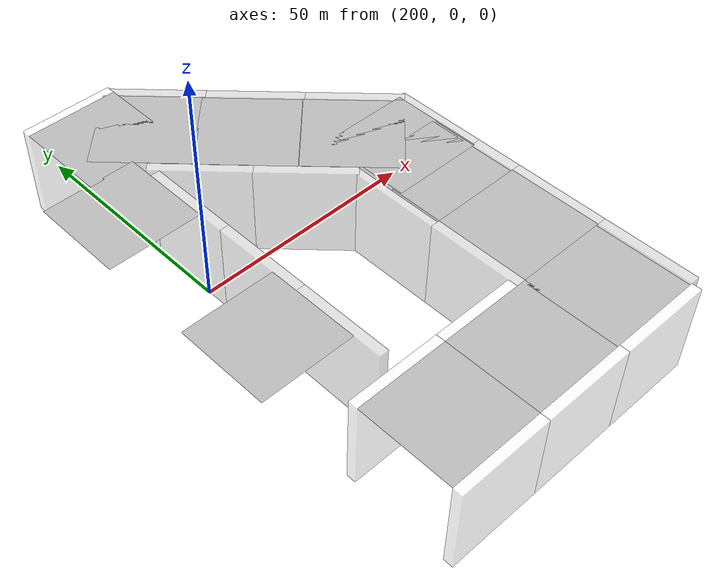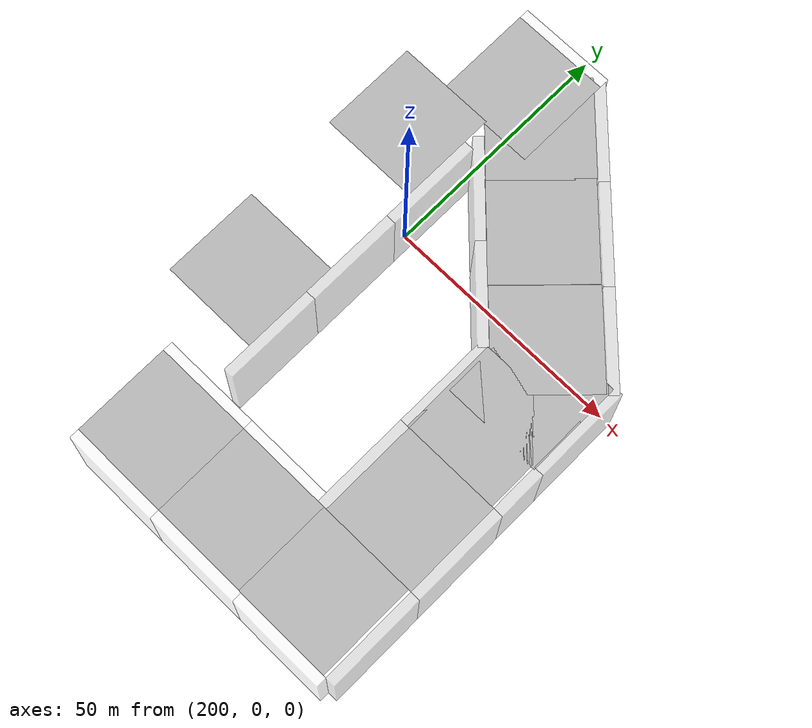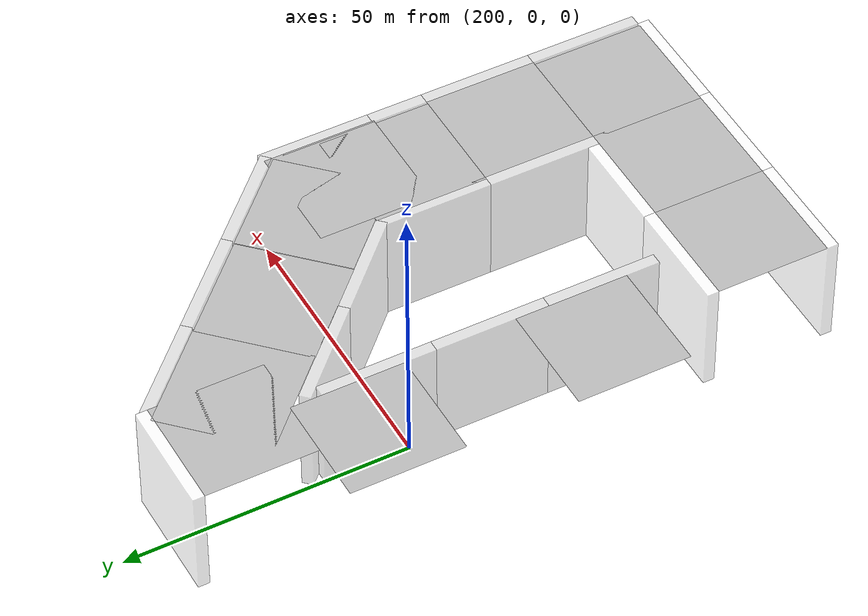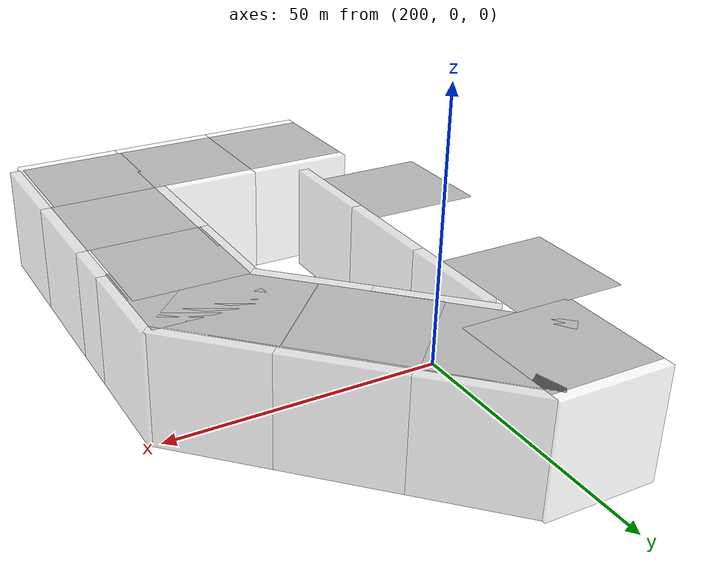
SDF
<sdf version="1.7">
 <model name="race2">
  <link name="link_clone_0_clone_4_clone_clone_0">
   <pose>251 -60 10 -1.5708 4e-06 1.5708</pose>
   <visual name="visual">
    <transparency>0.6</transparency>
    <geometry><box><size>20 20 2</size></box></geometry>
    <material>
     <script>
      <uri>model://new_wall/materials/scripts</uri>
      <uri>model://new_wall/materials/textures/</uri>
      <name>NewWall/Image</name>
     </script>
     <shader type="pixel"/>
    </material>
   </visual>
   <collision name="collision">
    <geometry><box><size>20 20 2</size></box></geometry>
    <surface>
     <friction>
      <ode><mu>1</mu><mu2>1</mu2><fdir1>0 0 0</fdir1><slip1>0</slip1><slip2>0</slip2></ode>
      <torsional>
       <coefficient>1</coefficient>
       <patch_radius>0</patch_radius>
       <surface_radius>0</surface_radius>
       <use_patch_radius>1</use_patch_radius>
       <ode><slip>0</slip></ode>
      </torsional>
     </friction>
     <bounce><restitution_coefficient>0</restitution_coefficient><threshold>1e+06</threshold></bounce>
     <contact>
      <collide_without_contact>0</collide_without_contact>
      <collide_without_contact_bitmask>1</collide_without_contact_bitmask>
      <collide_bitmask>1</collide_bitmask>
      <ode>
       <soft_cfm>0</soft_cfm>
       <soft_erp>0.2</soft_erp>
       <kp>1e+13</kp>
       <kd>1</kd>
       <max_vel>0.01</max_vel>
       <min_depth>0</min_depth>
      </ode>
      <bullet>
       <split_impulse>1</split_impulse>
       <split_impulse_penetration_threshold>-0.01</split_impulse_penetration_threshold>
       <soft_cfm>0</soft_cfm>
       <soft_erp>0.2</soft_erp>
       <kp>1e+13</kp>
       <kd>1</kd>
      </bullet>
     </contact>
    </surface>
   </collision>
  </link>
  <link name="link_clone_0_clone_4_clone_clone_0_clone">
   <pose>229 -40 10 -1.5708 4e-06 1.5708</pose>
   <visual name="visual">
    <transparency>0.6</transparency>
    <geometry><box><size>20 20 2</size></box></geometry>
    <material>
     <script>
      <uri>model://new_wall/materials/scripts</uri>
      <uri>model://new_wall/materials/textures/</uri>
      <name>NewWall/Image</name>
     </script>
     <shader type="pixel"/>
    </material>
   </visual>
   <collision name="collision">
    <geometry><box><size>20 20 2</size></box></geometry>
    <surface>
     <friction>
      <ode><mu>1</mu><mu2>1</mu2><fdir1>0 0 0</fdir1><slip1>0</slip1><slip2>0</slip2></ode>
      <torsional>
       <coefficient>1</coefficient>
       <patch_radius>0</patch_radius>
       <surface_radius>0</surface_radius>
       <use_patch_radius>1</use_patch_radius>
       <ode><slip>0</slip></ode>
      </torsional>
     </friction>
     <bounce><restitution_coefficient>0</restitution_coefficient><threshold>1e+06</threshold></bounce>
     <contact>
      <collide_without_contact>0</collide_without_contact>
      <collide_without_contact_bitmask>1</collide_without_contact_bitmask>
      <collide_bitmask>1</collide_bitmask>
      <ode>
       <soft_cfm>0</soft_cfm>
       <soft_erp>0.2</soft_erp>
       <kp>1e+13</kp>
       <kd>1</kd>
       <max_vel>0.01</max_vel>
       <min_depth>0</min_depth>
      </ode>
      <bullet>
       <split_impulse>1</split_impulse>
       <split_impulse_penetration_threshold>-0.01</split_impulse_penetration_threshold>
       <soft_cfm>0</soft_cfm>
       <soft_erp>0.2</soft_erp>
       <kp>1e+13</kp>
       <kd>1</kd>
      </bullet>
     </contact>
    </surface>
   </collision>
  </link>
  <link name="link_clone_0_clone_4_clone_clone_0_clone_clone">
   <pose>229 -20 10 -1.5708 4e-06 1.5708</pose>
   <visual name="visual">
    <transparency>0.6</transparency>
    <geometry><box><size>20 20 2</size></box></geometry>
    <material>
     <script>
      <uri>model://new_wall/materials/scripts</uri>
      <uri>model://new_wall/materials/textures/</uri>
      <name>NewWall/Image</name>
     </script>
     <shader type="pixel"/>
    </material>
   </visual>
   <collision name="collision">
    <geometry><box><size>20 20 2</size></box></geometry>
    <surface>
     <friction>
      <ode><mu>1</mu><mu2>1</mu2><fdir1>0 0 0</fdir1><slip1>0</slip1><slip2>0</slip2></ode>
      <torsional>
       <coefficient>1</coefficient>
       <patch_radius>0</patch_radius>
       <surface_radius>0</surface_radius>
       <use_patch_radius>1</use_patch_radius>
       <ode><slip>0</slip></ode>
      </torsional>
     </friction>
     <bounce><restitution_coefficient>0</restitution_coefficient><threshold>1e+06</threshold></bounce>
     <contact>
      <collide_without_contact>0</collide_without_contact>
      <collide_without_contact_bitmask>1</collide_without_contact_bitmask>
      <collide_bitmask>1</collide_bitmask>
      <ode>
       <soft_cfm>0</soft_cfm>
       <soft_erp>0.2</soft_erp>
       <kp>1e+13</kp>
       <kd>1</kd>
       <max_vel>0.01</max_vel>
       <min_depth>0</min_depth>
      </ode>
      <bullet>
       <split_impulse>1</split_impulse>
       <split_impulse_penetration_threshold>-0.01</split_impulse_penetration_threshold>
       <soft_cfm>0</soft_cfm>
       <soft_erp>0.2</soft_erp>
       <kp>1e+13</kp>
       <kd>1</kd>
      </bullet>
     </contact>
    </surface>
   </collision>
  </link>
  <link name="link_clone_0_clone_4_clone_clone_0_clone_clone_0">
   <pose>251 -20 10 -1.5708 4e-06 1.5708</pose>
   <visual name="visual">
    <transparency>0.6</transparency>
    <geometry><box><size>20 20 2</size></box></geometry>
    <material>
     <script>
      <uri>model://new_wall/materials/scripts</uri>
      <uri>model://new_wall/materials/textures/</uri>
      <name>NewWall/Image</name>
     </script>
     <shader type="pixel"/>
    </material>
   </visual>
   <collision name="collision">
    <geometry><box><size>20 20 2</size></box></geometry>
    <surface>
     <friction>
      <ode><mu>1</mu><mu2>1</mu2><fdir1>0 0 0</fdir1><slip1>0</slip1><slip2>0</slip2></ode>
      <torsional>
       <coefficient>1</coefficient>
       <patch_radius>0</patch_radius>
       <surface_radius>0</surface_radius>
       <use_patch_radius>1</use_patch_radius>
       <ode><slip>0</slip></ode>
      </torsional>
     </friction>
     <bounce><restitution_coefficient>0</restitution_coefficient><threshold>1e+06</threshold></bounce>
     <contact>
      <collide_without_contact>0</collide_without_contact>
      <collide_without_contact_bitmask>1</collide_without_contact_bitmask>
      <collide_bitmask>1</collide_bitmask>
      <ode>
       <soft_cfm>0</soft_cfm>
       <soft_erp>0.2</soft_erp>
       <kp>1e+13</kp>
       <kd>1</kd>
       <max_vel>0.01</max_vel>
       <min_depth>0</min_depth>
      </ode>
      <bullet>
       <split_impulse>1</split_impulse>
       <split_impulse_penetration_threshold>-0.01</split_impulse_penetration_threshold>
       <soft_cfm>0</soft_cfm>
       <soft_erp>0.2</soft_erp>
       <kp>1e+13</kp>
       <kd>1</kd>
      </bullet>
     </contact>
    </surface>
   </collision>
  </link>
  <link name="link_clone_0_clone_4_clone_clone_0_clone_clone_1">
   <pose>251 -10 10 -1.5708 4e-06 1.5708</pose>
   <visual name="visual">
    <transparency>0.6</transparency>
    <geometry><box><size>20 20 2</size></box></geometry>
    <material>
     <script>
      <uri>model://new_wall/materials/scripts</uri>
      <uri>model://new_wall/materials/textures/</uri>
      <name>NewWall/Image</name>
     </script>
     <shader type="pixel"/>
    </material>
   </visual>
   <collision name="collision">
    <geometry><box><size>20 20 2</size></box></geometry>
    <surface>
     <friction>
      <ode><mu>1</mu><mu2>1</mu2><fdir1>0 0 0</fdir1><slip1>0</slip1><slip2>0</slip2></ode>
      <torsional>
       <coefficient>1</coefficient>
       <patch_radius>0</patch_radius>
       <surface_radius>0</surface_radius>
       <use_patch_radius>1</use_patch_radius>
       <ode><slip>0</slip></ode>
      </torsional>
     </friction>
     <bounce><restitution_coefficient>0</restitution_coefficient><threshold>1e+06</threshold></bounce>
     <contact>
      <collide_without_contact>0</collide_without_contact>
      <collide_without_contact_bitmask>1</collide_without_contact_bitmask>
      <collide_bitmask>1</collide_bitmask>
      <ode>
       <soft_cfm>0</soft_cfm>
       <soft_erp>0.2</soft_erp>
       <kp>1e+13</kp>
       <kd>1</kd>
       <max_vel>0.01</max_vel>
       <min_depth>0</min_depth>
      </ode>
      <bullet>
       <split_impulse>1</split_impulse>
       <split_impulse_penetration_threshold>-0.01</split_impulse_penetration_threshold>
       <soft_cfm>0</soft_cfm>
       <soft_erp>0.2</soft_erp>
       <kp>1e+13</kp>
       <kd>1</kd>
      </bullet>
     </contact>
    </surface>
   </collision>
  </link>
  <link name="link_clone_0_clone_4_clone_clone_0_clone_clone_clone">
   <pose>201 5 10 -1.5708 4e-06 1.5708</pose>
   <visual name="visual">
    <transparency>0.6</transparency>
    <geometry><box><size>20 20 2</size></box></geometry>
    <material>
     <script>
      <uri>model://new_wall/materials/scripts</uri>
      <uri>model://new_wall/materials/textures/</uri>
      <name>NewWall/Image</name>
     </script>
     <shader type="pixel"/>
    </material>
   </visual>
   <collision name="collision">
    <geometry><box><size>20 20 2</size></box></geometry>
    <surface>
     <friction>
      <ode><mu>1</mu><mu2>1</mu2><fdir1>0 0 0</fdir1><slip1>0</slip1><slip2>0</slip2></ode>
      <torsional>
       <coefficient>1</coefficient>
       <patch_radius>0</patch_radius>
       <surface_radius>0</surface_radius>
       <use_patch_radius>1</use_patch_radius>
       <ode><slip>0</slip></ode>
      </torsional>
     </friction>
     <bounce><restitution_coefficient>0</restitution_coefficient><threshold>1e+06</threshold></bounce>
     <contact>
      <collide_without_contact>0</collide_without_contact>
      <collide_without_contact_bitmask>1</collide_without_contact_bitmask>
      <collide_bitmask>1</collide_bitmask>
      <ode>
       <soft_cfm>0</soft_cfm>
       <soft_erp>0.2</soft_erp>
       <kp>1e+13</kp>
       <kd>1</kd>
       <max_vel>0.01</max_vel>
       <min_depth>0</min_depth>
      </ode>
      <bullet>
       <split_impulse>1</split_impulse>
       <split_impulse_penetration_threshold>-0.01</split_impulse_penetration_threshold>
       <soft_cfm>0</soft_cfm>
       <soft_erp>0.2</soft_erp>
       <kp>1e+13</kp>
       <kd>1</kd>
      </bullet>
     </contact>
    </surface>
   </collision>
  </link>
  <link name="link_clone_0_clone_4_clone_clone_0_clone_clone_clone_0">
   <pose>201 -15 10 -1.5708 4e-06 1.5708</pose>
   <visual name="visual">
    <transparency>0.6</transparency>
    <geometry><box><size>20 20 2</size></box></geometry>
    <material>
     <script>
      <uri>model://new_wall/materials/scripts</uri>
      <uri>model://new_wall/materials/textures/</uri>
      <name>NewWall/Image</name>
     </script>
     <shader type="pixel"/>
    </material>
   </visual>
   <collision name="collision">
    <geometry><box><size>20 20 2</size></box></geometry>
    <surface>
     <friction>
      <ode><mu>1</mu><mu2>1</mu2><fdir1>0 0 0</fdir1><slip1>0</slip1><slip2>0</slip2></ode>
      <torsional>
       <coefficient>1</coefficient>
       <patch_radius>0</patch_radius>
       <surface_radius>0</surface_radius>
       <use_patch_radius>1</use_patch_radius>
       <ode><slip>0</slip></ode>
      </torsional>
     </friction>
     <bounce><restitution_coefficient>0</restitution_coefficient><threshold>1e+06</threshold></bounce>
     <contact>
      <collide_without_contact>0</collide_without_contact>
      <collide_without_contact_bitmask>1</collide_without_contact_bitmask>
      <collide_bitmask>1</collide_bitmask>
      <ode>
       <soft_cfm>0</soft_cfm>
       <soft_erp>0.2</soft_erp>
       <kp>1e+13</kp>
       <kd>1</kd>
       <max_vel>0.01</max_vel>
       <min_depth>0</min_depth>
      </ode>
      <bullet>
       <split_impulse>1</split_impulse>
       <split_impulse_penetration_threshold>-0.01</split_impulse_penetration_threshold>
       <soft_cfm>0</soft_cfm>
       <soft_erp>0.2</soft_erp>
       <kp>1e+13</kp>
       <kd>1</kd>
      </bullet>
     </contact>
    </surface>
   </collision>
  </link>
  <link name="link_clone_0_clone_4_clone_clone_0_clone_clone_clone_1">
   <pose>201 -35 10 -1.5708 4e-06 1.5708</pose>
   <visual name="visual">
    <transparency>0.6</transparency>
    <geometry><box><size>20 20 2</size></box></geometry>
    <material>
     <script>
      <uri>model://new_wall/materials/scripts</uri>
      <uri>model://new_wall/materials/textures/</uri>
      <name>NewWall/Image</name>
     </script>
     <shader type="pixel"/>
    </material>
   </visual>
   <collision name="collision">
    <geometry><box><size>20 20 2</size></box></geometry>
    <surface>
     <friction>
      <ode><mu>1</mu><mu2>1</mu2><fdir1>0 0 0</fdir1><slip1>0</slip1><slip2>0</slip2></ode>
      <torsional>
       <coefficient>1</coefficient>
       <patch_radius>0</patch_radius>
       <surface_radius>0</surface_radius>
       <use_patch_radius>1</use_patch_radius>
       <ode><slip>0</slip></ode>
      </torsional>
     </friction>
     <bounce><restitution_coefficient>0</restitution_coefficient><threshold>1e+06</threshold></bounce>
     <contact>
      <collide_without_contact>0</collide_without_contact>
      <collide_without_contact_bitmask>1</collide_without_contact_bitmask>
      <collide_bitmask>1</collide_bitmask>
      <ode>
       <soft_cfm>0</soft_cfm>
       <soft_erp>0.2</soft_erp>
       <kp>1e+13</kp>
       <kd>1</kd>
       <max_vel>0.01</max_vel>
       <min_depth>0</min_depth>
      </ode>
      <bullet>
       <split_impulse>1</split_impulse>
       <split_impulse_penetration_threshold>-0.01</split_impulse_penetration_threshold>
       <soft_cfm>0</soft_cfm>
       <soft_erp>0.2</soft_erp>
       <kp>1e+13</kp>
       <kd>1</kd>
      </bullet>
     </contact>
    </surface>
   </collision>
  </link>
  <link name="link_clone_0_clone_4_clone_clone_1">
   <pose>251 -40 10 -1.5708 4e-06 1.5708</pose>
   <visual name="visual">
    <transparency>0.6</transparency>
    <geometry><box><size>20 20 2</size></box></geometry>
    <material>
     <script>
      <uri>model://new_wall/materials/scripts</uri>
      <uri>model://new_wall/materials/textures/</uri>
      <name>NewWall/Image</name>
     </script>
     <shader type="pixel"/>
    </material>
   </visual>
   <collision name="collision">
    <geometry><box><size>20 20 2</size></box></geometry>
    <surface>
     <friction>
      <ode><mu>1</mu><mu2>1</mu2><fdir1>0 0 0</fdir1><slip1>0</slip1><slip2>0</slip2></ode>
      <torsional>
       <coefficient>1</coefficient>
       <patch_radius>0</patch_radius>
       <surface_radius>0</surface_radius>
       <use_patch_radius>1</use_patch_radius>
       <ode><slip>0</slip></ode>
      </torsional>
     </friction>
     <bounce><restitution_coefficient>0</restitution_coefficient><threshold>1e+06</threshold></bounce>
     <contact>
      <collide_without_contact>0</collide_without_contact>
      <collide_without_contact_bitmask>1</collide_without_contact_bitmask>
      <collide_bitmask>1</collide_bitmask>
      <ode>
       <soft_cfm>0</soft_cfm>
       <soft_erp>0.2</soft_erp>
       <kp>1e+13</kp>
       <kd>1</kd>
       <max_vel>0.01</max_vel>
       <min_depth>0</min_depth>
      </ode>
      <bullet>
       <split_impulse>1</split_impulse>
       <split_impulse_penetration_threshold>-0.01</split_impulse_penetration_threshold>
       <soft_cfm>0</soft_cfm>
       <soft_erp>0.2</soft_erp>
       <kp>1e+13</kp>
       <kd>1</kd>
      </bullet>
     </contact>
    </surface>
   </collision>
  </link>
  <link name="link_clone_0_clone_4_clone_clone_1_clone_clone_clone_0">
   <pose>222 -3.59146 10 -1.5708 5e-06 2.3562</pose>
   <visual name="visual">
    <transparency>0.6</transparency>
    <geometry><box><size>20 20 2</size></box></geometry>
    <material>
     <script>
      <uri>model://new_wall/materials/scripts</uri>
      <uri>model://new_wall/materials/textures/</uri>
      <name>NewWall/Image</name>
     </script>
     <shader type="pixel"/>
    </material>
   </visual>
   <collision name="collision">
    <geometry><box><size>20 20 2</size></box></geometry>
    <surface>
     <friction>
      <ode><mu>1</mu><mu2>1</mu2><fdir1>0 0 0</fdir1><slip1>0</slip1><slip2>0</slip2></ode>
      <torsional>
       <coefficient>1</coefficient>
       <patch_radius>0</patch_radius>
       <surface_radius>0</surface_radius>
       <use_patch_radius>1</use_patch_radius>
       <ode><slip>0</slip></ode>
      </torsional>
     </friction>
     <bounce><restitution_coefficient>0</restitution_coefficient><threshold>1e+06</threshold></bounce>
     <contact>
      <collide_without_contact>0</collide_without_contact>
      <collide_without_contact_bitmask>1</collide_without_contact_bitmask>
      <collide_bitmask>1</collide_bitmask>
      <ode>
       <soft_cfm>0</soft_cfm>
       <soft_erp>0.2</soft_erp>
       <kp>1e+13</kp>
       <kd>1</kd>
       <max_vel>0.01</max_vel>
       <min_depth>0</min_depth>
      </ode>
      <bullet>
       <split_impulse>1</split_impulse>
       <split_impulse_penetration_threshold>-0.01</split_impulse_penetration_threshold>
       <soft_cfm>0</soft_cfm>
       <soft_erp>0.2</soft_erp>
       <kp>1e+13</kp>
       <kd>1</kd>
      </bullet>
     </contact>
    </surface>
   </collision>
  </link>
  <link name="link_clone_0_clone_4_clone_clone_1_clone_clone_clone_0_clone">
   <pose>208 10.4467 10 -1.5708 5e-06 2.3562</pose>
   <visual name="visual">
    <transparency>0.6</transparency>
    <geometry><box><size>20 20 2</size></box></geometry>
    <material>
     <script>
      <uri>model://new_wall/materials/scripts</uri>
      <uri>model://new_wall/materials/textures/</uri>
      <name>NewWall/Image</name>
     </script>
     <shader type="pixel"/>
    </material>
   </visual>
   <collision name="collision">
    <geometry><box><size>20 20 2</size></box></geometry>
    <surface>
     <friction>
      <ode><mu>1</mu><mu2>1</mu2><fdir1>0 0 0</fdir1><slip1>0</slip1><slip2>0</slip2></ode>
      <torsional>
       <coefficient>1</coefficient>
       <patch_radius>0</patch_radius>
       <surface_radius>0</surface_radius>
       <use_patch_radius>1</use_patch_radius>
       <ode><slip>0</slip></ode>
      </torsional>
     </friction>
     <bounce><restitution_coefficient>0</restitution_coefficient><threshold>1e+06</threshold></bounce>
     <contact>
      <collide_without_contact>0</collide_without_contact>
      <collide_without_contact_bitmask>1</collide_without_contact_bitmask>
      <collide_bitmask>1</collide_bitmask>
      <ode>
       <soft_cfm>0</soft_cfm>
       <soft_erp>0.2</soft_erp>
       <kp>1e+13</kp>
       <kd>1</kd>
       <max_vel>0.01</max_vel>
       <min_depth>0</min_depth>
      </ode>
      <bullet>
       <split_impulse>1</split_impulse>
       <split_impulse_penetration_threshold>-0.01</split_impulse_penetration_threshold>
       <soft_cfm>0</soft_cfm>
       <soft_erp>0.2</soft_erp>
       <kp>1e+13</kp>
       <kd>1</kd>
      </bullet>
     </contact>
    </surface>
   </collision>
  </link>
  <link name="link_clone_0_clone_4_clone_clone_1_clone_clone_clone_0_clone_0">
   <pose>244 6 10 -1.5708 5e-06 2.3562</pose>
   <visual name="visual">
    <transparency>0.6</transparency>
    <geometry><box><size>20 20 2</size></box></geometry>
    <material>
     <script>
      <uri>model://new_wall/materials/scripts</uri>
      <uri>model://new_wall/materials/textures/</uri>
      <name>NewWall/Image</name>
     </script>
     <shader type="pixel"/>
    </material>
   </visual>
   <collision name="collision">
    <geometry><box><size>20 20 2</size></box></geometry>
    <surface>
     <friction>
      <ode><mu>1</mu><mu2>1</mu2><fdir1>0 0 0</fdir1><slip1>0</slip1><slip2>0</slip2></ode>
      <torsional>
       <coefficient>1</coefficient>
       <patch_radius>0</patch_radius>
       <surface_radius>0</surface_radius>
       <use_patch_radius>1</use_patch_radius>
       <ode><slip>0</slip></ode>
      </torsional>
     </friction>
     <bounce><restitution_coefficient>0</restitution_coefficient><threshold>1e+06</threshold></bounce>
     <contact>
      <collide_without_contact>0</collide_without_contact>
      <collide_without_contact_bitmask>1</collide_without_contact_bitmask>
      <collide_bitmask>1</collide_bitmask>
      <ode>
       <soft_cfm>0</soft_cfm>
       <soft_erp>0.2</soft_erp>
       <kp>1e+13</kp>
       <kd>1</kd>
       <max_vel>0.01</max_vel>
       <min_depth>0</min_depth>
      </ode>
      <bullet>
       <split_impulse>1</split_impulse>
       <split_impulse_penetration_threshold>-0.01</split_impulse_penetration_threshold>
       <soft_cfm>0</soft_cfm>
       <soft_erp>0.2</soft_erp>
       <kp>1e+13</kp>
       <kd>1</kd>
      </bullet>
     </contact>
    </surface>
   </collision>
  </link>
  <link name="link_clone_0_clone_4_clone_clone_1_clone_clone_clone_0_clone_1">
   <pose>230 20 10 -1.5708 5e-06 2.3562</pose>
   <visual name="visual">
    <transparency>0.6</transparency>
    <geometry><box><size>20 20 2</size></box></geometry>
    <material>
     <script>
      <uri>model://new_wall/materials/scripts</uri>
      <uri>model://new_wall/materials/textures/</uri>
      <name>NewWall/Image</name>
     </script>
     <shader type="pixel"/>
    </material>
   </visual>
   <collision name="collision">
    <geometry><box><size>20 20 2</size></box></geometry>
    <surface>
     <friction>
      <ode><mu>1</mu><mu2>1</mu2><fdir1>0 0 0</fdir1><slip1>0</slip1><slip2>0</slip2></ode>
      <torsional>
       <coefficient>1</coefficient>
       <patch_radius>0</patch_radius>
       <surface_radius>0</surface_radius>
       <use_patch_radius>1</use_patch_radius>
       <ode><slip>0</slip></ode>
      </torsional>
     </friction>
     <bounce><restitution_coefficient>0</restitution_coefficient><threshold>1e+06</threshold></bounce>
     <contact>
      <collide_without_contact>0</collide_without_contact>
      <collide_without_contact_bitmask>1</collide_without_contact_bitmask>
      <collide_bitmask>1</collide_bitmask>
      <ode>
       <soft_cfm>0</soft_cfm>
       <soft_erp>0.2</soft_erp>
       <kp>1e+13</kp>
       <kd>1</kd>
       <max_vel>0.01</max_vel>
       <min_depth>0</min_depth>
      </ode>
      <bullet>
       <split_impulse>1</split_impulse>
       <split_impulse_penetration_threshold>-0.01</split_impulse_penetration_threshold>
       <soft_cfm>0</soft_cfm>
       <soft_erp>0.2</soft_erp>
       <kp>1e+13</kp>
       <kd>1</kd>
      </bullet>
     </contact>
    </surface>
   </collision>
  </link>
  <link name="link_clone_0_clone_4_clone_clone_1_clone_clone_clone_0_clone_2">
   <pose>216 34 10 -1.5708 5e-06 2.3562</pose>
   <visual name="visual">
    <transparency>0.6</transparency>
    <geometry><box><size>20 20 2</size></box></geometry>
    <material>
     <script>
      <uri>model://new_wall/materials/scripts</uri>
      <uri>model://new_wall/materials/textures/</uri>
      <name>NewWall/Image</name>
     </script>
     <shader type="pixel"/>
    </material>
   </visual>
   <collision name="collision">
    <geometry><box><size>20 20 2</size></box></geometry>
    <surface>
     <friction>
      <ode><mu>1</mu><mu2>1</mu2><fdir1>0 0 0</fdir1><slip1>0</slip1><slip2>0</slip2></ode>
      <torsional>
       <coefficient>1</coefficient>
       <patch_radius>0</patch_radius>
       <surface_radius>0</surface_radius>
       <use_patch_radius>1</use_patch_radius>
       <ode><slip>0</slip></ode>
      </torsional>
     </friction>
     <bounce><restitution_coefficient>0</restitution_coefficient><threshold>1e+06</threshold></bounce>
     <contact>
      <collide_without_contact>0</collide_without_contact>
      <collide_without_contact_bitmask>1</collide_without_contact_bitmask>
      <collide_bitmask>1</collide_bitmask>
      <ode>
       <soft_cfm>0</soft_cfm>
       <soft_erp>0.2</soft_erp>
       <kp>1e+13</kp>
       <kd>1</kd>
       <max_vel>0.01</max_vel>
       <min_depth>0</min_depth>
      </ode>
      <bullet>
       <split_impulse>1</split_impulse>
       <split_impulse_penetration_threshold>-0.01</split_impulse_penetration_threshold>
       <soft_cfm>0</soft_cfm>
       <soft_erp>0.2</soft_erp>
       <kp>1e+13</kp>
       <kd>1</kd>
      </bullet>
     </contact>
    </surface>
   </collision>
  </link>
  <link name="link_clone_2_clone_3_clone_6_clone_clone_clone_0">
   <pose>200 -71 10 -1.5708 0 0</pose>
   <inertial>
    <mass>1</mass>
    <inertia><ixx>1</ixx><ixy>0</ixy><ixz>0</ixz><iyy>1</iyy><iyz>0</iyz><izz>1</izz></inertia>
   </inertial>
   <visual name="visual">
    <transparency>0.6</transparency>
    <geometry><box><size>20 20 2</size></box></geometry>
    <material>
     <script>
      <uri>model://new_wall/materials/scripts</uri>
      <uri>model://new_wall/materials/textures/</uri>
      <name>NewWall/Image</name>
     </script>
     <shader type="pixel"><normal_map>__default__</normal_map></shader>
     <ambient>1 1 1 1</ambient>
     <diffuse>1 1 1 1</diffuse>
     <specular>0.03 0.03 0.03 1</specular>
     <emissive>0 0 0 1</emissive>
    </material>
   </visual>
   <collision name="collision">
    <geometry><box><size>20 20 2</size></box></geometry>
    <surface>
     <friction>
      <ode><mu>1</mu><mu2>1</mu2><fdir1>0 0 0</fdir1><slip1>0</slip1><slip2>0</slip2></ode>
      <torsional>
       <coefficient>1</coefficient>
       <patch_radius>0</patch_radius>
       <surface_radius>0</surface_radius>
       <use_patch_radius>1</use_patch_radius>
       <ode><slip>0</slip></ode>
      </torsional>
     </friction>
     <bounce><restitution_coefficient>0</restitution_coefficient><threshold>1e+06</threshold></bounce>
     <contact>
      <collide_without_contact>0</collide_without_contact>
      <collide_without_contact_bitmask>1</collide_without_contact_bitmask>
      <collide_bitmask>1</collide_bitmask>
      <ode>
       <soft_cfm>0</soft_cfm>
       <soft_erp>0.2</soft_erp>
       <kp>1e+13</kp>
       <kd>1</kd>
       <max_vel>0.01</max_vel>
       <min_depth>0</min_depth>
      </ode>
      <bullet>
       <split_impulse>1</split_impulse>
       <split_impulse_penetration_threshold>-0.01</split_impulse_penetration_threshold>
       <soft_cfm>0</soft_cfm>
       <soft_erp>0.2</soft_erp>
       <kp>1e+13</kp>
       <kd>1</kd>
      </bullet>
     </contact>
    </surface>
   </collision>
  </link>
  <link name="link_clone_2_clone_3_clone_6_clone_clone_clone_1">
   <pose>200 -49 10 -1.5708 0 0</pose>
   <inertial>
    <mass>1</mass>
    <inertia><ixx>1</ixx><ixy>0</ixy><ixz>0</ixz><iyy>1</iyy><iyz>0</iyz><izz>1</izz></inertia>
   </inertial>
   <visual name="visual">
    <transparency>0.6</transparency>
    <geometry><box><size>20 20 2</size></box></geometry>
    <material>
     <script>
      <uri>model://new_wall/materials/scripts</uri>
      <uri>model://new_wall/materials/textures/</uri>
      <name>NewWall/Image</name>
     </script>
     <shader type="pixel"><normal_map>__default__</normal_map></shader>
     <ambient>1 1 1 1</ambient>
     <diffuse>1 1 1 1</diffuse>
     <specular>0.03 0.03 0.03 1</specular>
     <emissive>0 0 0 1</emissive>
    </material>
   </visual>
   <collision name="collision">
    <geometry><box><size>20 20 2</size></box></geometry>
    <surface>
     <friction>
      <ode><mu>1</mu><mu2>1</mu2><fdir1>0 0 0</fdir1><slip1>0</slip1><slip2>0</slip2></ode>
      <torsional>
       <coefficient>1</coefficient>
       <patch_radius>0</patch_radius>
       <surface_radius>0</surface_radius>
       <use_patch_radius>1</use_patch_radius>
       <ode><slip>0</slip></ode>
      </torsional>
     </friction>
     <bounce><restitution_coefficient>0</restitution_coefficient><threshold>1e+06</threshold></bounce>
     <contact>
      <collide_without_contact>0</collide_without_contact>
      <collide_without_contact_bitmask>1</collide_without_contact_bitmask>
      <collide_bitmask>1</collide_bitmask>
      <ode>
       <soft_cfm>0</soft_cfm>
       <soft_erp>0.2</soft_erp>
       <kp>1e+13</kp>
       <kd>1</kd>
       <max_vel>0.01</max_vel>
       <min_depth>0</min_depth>
      </ode>
      <bullet>
       <split_impulse>1</split_impulse>
       <split_impulse_penetration_threshold>-0.01</split_impulse_penetration_threshold>
       <soft_cfm>0</soft_cfm>
       <soft_erp>0.2</soft_erp>
       <kp>1e+13</kp>
       <kd>1</kd>
      </bullet>
     </contact>
    </surface>
   </collision>
  </link>
  <link name="link_clone_2_clone_3_clone_6_clone_clone_clone_1_clone">
   <pose>220 -49 10 -1.5708 0 0</pose>
   <inertial>
    <mass>1</mass>
    <inertia><ixx>1</ixx><ixy>0</ixy><ixz>0</ixz><iyy>1</iyy><iyz>0</iyz><izz>1</izz></inertia>
   </inertial>
   <visual name="visual">
    <transparency>0.6</transparency>
    <geometry><box><size>20 20 2</size></box></geometry>
    <material>
     <script>
      <uri>model://new_wall/materials/scripts</uri>
      <uri>model://new_wall/materials/textures/</uri>
      <name>NewWall/Image</name>
     </script>
     <shader type="pixel"><normal_map>__default__</normal_map></shader>
     <ambient>1 1 1 1</ambient>
     <diffuse>1 1 1 1</diffuse>
     <specular>0.03 0.03 0.03 1</specular>
     <emissive>0 0 0 1</emissive>
    </material>
   </visual>
   <collision name="collision">
    <geometry><box><size>20 20 2</size></box></geometry>
    <surface>
     <friction>
      <ode><mu>1</mu><mu2>1</mu2><fdir1>0 0 0</fdir1><slip1>0</slip1><slip2>0</slip2></ode>
      <torsional>
       <coefficient>1</coefficient>
       <patch_radius>0</patch_radius>
       <surface_radius>0</surface_radius>
       <use_patch_radius>1</use_patch_radius>
       <ode><slip>0</slip></ode>
      </torsional>
     </friction>
     <bounce><restitution_coefficient>0</restitution_coefficient><threshold>1e+06</threshold></bounce>
     <contact>
      <collide_without_contact>0</collide_without_contact>
      <collide_without_contact_bitmask>1</collide_without_contact_bitmask>
      <collide_bitmask>1</collide_bitmask>
      <ode>
       <soft_cfm>0</soft_cfm>
       <soft_erp>0.2</soft_erp>
       <kp>1e+13</kp>
       <kd>1</kd>
       <max_vel>0.01</max_vel>
       <min_depth>0</min_depth>
      </ode>
      <bullet>
       <split_impulse>1</split_impulse>
       <split_impulse_penetration_threshold>-0.01</split_impulse_penetration_threshold>
       <soft_cfm>0</soft_cfm>
       <soft_erp>0.2</soft_erp>
       <kp>1e+13</kp>
       <kd>1</kd>
      </bullet>
     </contact>
    </surface>
   </collision>
  </link>
  <link name="link_clone_2_clone_3_clone_6_clone_clone_clone_1_clone_0_clone">
   <pose>200 41 10 -1.5708 0 0</pose>
   <inertial>
    <mass>1</mass>
    <inertia><ixx>1</ixx><ixy>0</ixy><ixz>0</ixz><iyy>1</iyy><iyz>0</iyz><izz>1</izz></inertia>
   </inertial>
   <visual name="visual">
    <transparency>0.6</transparency>
    <geometry><box><size>20 20 2</size></box></geometry>
    <material>
     <script>
      <uri>model://new_wall/materials/scripts</uri>
      <uri>model://new_wall/materials/textures/</uri>
      <name>NewWall/Image</name>
     </script>
     <shader type="pixel"><normal_map>__default__</normal_map></shader>
     <ambient>1 1 1 1</ambient>
     <diffuse>1 1 1 1</diffuse>
     <specular>0.03 0.03 0.03 1</specular>
     <emissive>0 0 0 1</emissive>
    </material>
   </visual>
   <collision name="collision">
    <geometry><box><size>20 20 2</size></box></geometry>
    <surface>
     <friction>
      <ode><mu>1</mu><mu2>1</mu2><fdir1>0 0 0</fdir1><slip1>0</slip1><slip2>0</slip2></ode>
      <torsional>
       <coefficient>1</coefficient>
       <patch_radius>0</patch_radius>
       <surface_radius>0</surface_radius>
       <use_patch_radius>1</use_patch_radius>
       <ode><slip>0</slip></ode>
      </torsional>
     </friction>
     <bounce><restitution_coefficient>0</restitution_coefficient><threshold>1e+06</threshold></bounce>
     <contact>
      <collide_without_contact>0</collide_without_contact>
      <collide_without_contact_bitmask>1</collide_without_contact_bitmask>
      <collide_bitmask>1</collide_bitmask>
      <ode>
       <soft_cfm>0</soft_cfm>
       <soft_erp>0.2</soft_erp>
       <kp>1e+13</kp>
       <kd>1</kd>
       <max_vel>0.01</max_vel>
       <min_depth>0</min_depth>
      </ode>
      <bullet>
       <split_impulse>1</split_impulse>
       <split_impulse_penetration_threshold>-0.01</split_impulse_penetration_threshold>
       <soft_cfm>0</soft_cfm>
       <soft_erp>0.2</soft_erp>
       <kp>1e+13</kp>
       <kd>1</kd>
      </bullet>
     </contact>
    </surface>
   </collision>
  </link>
  <link name="link_clone_2_clone_3_clone_6_clone_clone_clone_2">
   <pose>220 -71 10 -1.5708 0 0</pose>
   <inertial>
    <mass>1</mass>
    <inertia><ixx>1</ixx><ixy>0</ixy><ixz>0</ixz><iyy>1</iyy><iyz>0</iyz><izz>1</izz></inertia>
   </inertial>
   <visual name="visual">
    <transparency>0.6</transparency>
    <geometry><box><size>20 20 2</size></box></geometry>
    <material>
     <script>
      <uri>model://new_wall/materials/scripts</uri>
      <uri>model://new_wall/materials/textures/</uri>
      <name>NewWall/Image</name>
     </script>
     <shader type="pixel"><normal_map>__default__</normal_map></shader>
     <ambient>1 1 1 1</ambient>
     <diffuse>1 1 1 1</diffuse>
     <specular>0.03 0.03 0.03 1</specular>
     <emissive>0 0 0 1</emissive>
    </material>
   </visual>
   <collision name="collision">
    <geometry><box><size>20 20 2</size></box></geometry>
    <surface>
     <friction>
      <ode><mu>1</mu><mu2>1</mu2><fdir1>0 0 0</fdir1><slip1>0</slip1><slip2>0</slip2></ode>
      <torsional>
       <coefficient>1</coefficient>
       <patch_radius>0</patch_radius>
       <surface_radius>0</surface_radius>
       <use_patch_radius>1</use_patch_radius>
       <ode><slip>0</slip></ode>
      </torsional>
     </friction>
     <bounce><restitution_coefficient>0</restitution_coefficient><threshold>1e+06</threshold></bounce>
     <contact>
      <collide_without_contact>0</collide_without_contact>
      <collide_without_contact_bitmask>1</collide_without_contact_bitmask>
      <collide_bitmask>1</collide_bitmask>
      <ode>
       <soft_cfm>0</soft_cfm>
       <soft_erp>0.2</soft_erp>
       <kp>1e+13</kp>
       <kd>1</kd>
       <max_vel>0.01</max_vel>
       <min_depth>0</min_depth>
      </ode>
      <bullet>
       <split_impulse>1</split_impulse>
       <split_impulse_penetration_threshold>-0.01</split_impulse_penetration_threshold>
       <soft_cfm>0</soft_cfm>
       <soft_erp>0.2</soft_erp>
       <kp>1e+13</kp>
       <kd>1</kd>
      </bullet>
     </contact>
    </surface>
   </collision>
  </link>
  <link name="link_clone_2_clone_3_clone_6_clone_clone_clone_2_clone">
   <pose>240 -71 10 -1.5708 0 0</pose>
   <inertial>
    <mass>1</mass>
    <inertia><ixx>1</ixx><ixy>0</ixy><ixz>0</ixz><iyy>1</iyy><iyz>0</iyz><izz>1</izz></inertia>
   </inertial>
   <visual name="visual">
    <transparency>0.6</transparency>
    <geometry><box><size>20 20 2</size></box></geometry>
    <material>
     <script>
      <uri>model://new_wall/materials/scripts</uri>
      <uri>model://new_wall/materials/textures/</uri>
      <name>NewWall/Image</name>
     </script>
     <shader type="pixel"><normal_map>__default__</normal_map></shader>
     <ambient>1 1 1 1</ambient>
     <diffuse>1 1 1 1</diffuse>
     <specular>0.03 0.03 0.03 1</specular>
     <emissive>0 0 0 1</emissive>
    </material>
   </visual>
   <collision name="collision">
    <geometry><box><size>20 20 2</size></box></geometry>
    <surface>
     <friction>
      <ode><mu>1</mu><mu2>1</mu2><fdir1>0 0 0</fdir1><slip1>0</slip1><slip2>0</slip2></ode>
      <torsional>
       <coefficient>1</coefficient>
       <patch_radius>0</patch_radius>
       <surface_radius>0</surface_radius>
       <use_patch_radius>1</use_patch_radius>
       <ode><slip>0</slip></ode>
      </torsional>
     </friction>
     <bounce><restitution_coefficient>0</restitution_coefficient><threshold>1e+06</threshold></bounce>
     <contact>
      <collide_without_contact>0</collide_without_contact>
      <collide_without_contact_bitmask>1</collide_without_contact_bitmask>
      <collide_bitmask>1</collide_bitmask>
      <ode>
       <soft_cfm>0</soft_cfm>
       <soft_erp>0.2</soft_erp>
       <kp>1e+13</kp>
       <kd>1</kd>
       <max_vel>0.01</max_vel>
       <min_depth>0</min_depth>
      </ode>
      <bullet>
       <split_impulse>1</split_impulse>
       <split_impulse_penetration_threshold>-0.01</split_impulse_penetration_threshold>
       <soft_cfm>0</soft_cfm>
       <soft_erp>0.2</soft_erp>
       <kp>1e+13</kp>
       <kd>1</kd>
      </bullet>
     </contact>
    </surface>
   </collision>
  </link>
  <model name="oneSidedPlane_2_clone_7">
   <static>1</static>
   <link name="link">
    <collision name="collision"><geometry><box><size>20 20 0.1</size></box></geometry></collision>
    <visual name="visual">
     <cast_shadows>0</cast_shadows>
     <geometry><mesh><scale>1 1 1</scale><uri>model://oneSidedPlane_2/wall1.obj</uri></mesh></geometry>
    </visual>
   </link>
   <pose>200 -60 20 0 -0 0</pose>
  </model>
  <model name="oneSidedPlane_2_clone_7_clone">
   <static>1</static>
   <link name="link">
    <collision name="collision"><geometry><box><size>20 20 0.1</size></box></geometry></collision>
    <visual name="visual">
     <cast_shadows>0</cast_shadows>
     <geometry><mesh><scale>1 1 1</scale><uri>model://oneSidedPlane_2/wall1.obj</uri></mesh></geometry>
    </visual>
   </link>
   <pose>239.467 -60 20 0 -0 0</pose>
  </model>
  <model name="oneSidedPlane_2_clone_7_clone_0">
   <static>1</static>
   <link name="link">
    <collision name="collision"><geometry><box><size>20 20 0.1</size></box></geometry></collision>
    <visual name="visual">
     <cast_shadows>0</cast_shadows>
     <geometry><mesh><scale>1 1 1</scale><uri>model://oneSidedPlane_2/wall1.obj</uri></mesh></geometry>
    </visual>
   </link>
   <pose>240 -40 20 0 -0 0</pose>
  </model>
  <model name="oneSidedPlane_2_clone_7_clone_1">
   <static>1</static>
   <link name="link">
    <collision name="collision"><geometry><box><size>20 20 0.1</size></box></geometry></collision>
    <visual name="visual">
     <cast_shadows>0</cast_shadows>
     <geometry><mesh><scale>1 1 1</scale><uri>model://oneSidedPlane_2/wall1.obj</uri></mesh></geometry>
    </visual>
   </link>
   <pose>239.569 -20 20 0 -0 0</pose>
  </model>
  <model name="oneSidedPlane_2_clone_7_clone_1_clone">
   <static>1</static>
   <link name="link">
    <collision name="collision"><geometry><box><size>20 20 0.1</size></box></geometry></collision>
    <visual name="visual">
     <cast_shadows>0</cast_shadows>
     <geometry><mesh><scale>1 1 1</scale><uri>model://oneSidedPlane_2/wall1.obj</uri></mesh></geometry>
    </visual>
   </link>
   <pose>240.287 -10.3543 20 0 -0 0</pose>
  </model>
  <model name="oneSidedPlane_2_clone_7_clone_1_clone_0">
   <static>1</static>
   <link name="link">
    <collision name="collision"><geometry><box><size>20 20 0.1</size></box></geometry></collision>
    <visual name="visual">
     <cast_shadows>0</cast_shadows>
     <geometry><mesh><scale>1 1 1</scale><uri>model://oneSidedPlane_2/wall1.obj</uri></mesh></geometry>
    </visual>
   </link>
   <pose>200 30 20 0 -0 0</pose>
  </model>
  <model name="oneSidedPlane_2_clone_7_clone_1_clone_2">
   <static>1</static>
   <link name="link">
    <collision name="collision"><geometry><box><size>20 20 0.1</size></box></geometry></collision>
    <visual name="visual">
     <cast_shadows>0</cast_shadows>
     <geometry><mesh><scale>1 1 1</scale><uri>model://oneSidedPlane_2/wall1.obj</uri></mesh></geometry>
    </visual>
   </link>
   <pose>190 10.5491 20 0 -0 0</pose>
  </model>
  <model name="oneSidedPlane_2_clone_7_clone_1_clone_4">
   <static>1</static>
   <link name="link">
    <collision name="collision"><geometry><box><size>20 20 0.1</size></box></geometry></collision>
    <visual name="visual">
     <cast_shadows>0</cast_shadows>
     <geometry><mesh><scale>1 1 1</scale><uri>model://oneSidedPlane_2/wall1.obj</uri></mesh></geometry>
    </visual>
   </link>
   <pose>190 -29 20 0 -0 0</pose>
  </model>
  <model name="oneSidedPlane_2_clone_7_clone_2">
   <static>1</static>
   <link name="link">
    <collision name="collision"><geometry><box><size>20 20 0.1</size></box></geometry></collision>
    <visual name="visual">
     <cast_shadows>0</cast_shadows>
     <geometry><mesh><scale>1 1 1</scale><uri>model://oneSidedPlane_2/wall1.obj</uri></mesh></geometry>
    </visual>
   </link>
   <pose>235.901 -1.86303 20 0 -0 0.785398</pose>
  </model>
  <model name="oneSidedPlane_2_clone_7_clone_2_clone">
   <static>1</static>
   <link name="link">
    <collision name="collision"><geometry><box><size>20 20 0.1</size></box></geometry></collision>
    <visual name="visual">
     <cast_shadows>0</cast_shadows>
     <geometry><mesh><scale>1 1 1</scale><uri>model://oneSidedPlane_2/wall1.obj</uri></mesh></geometry>
    </visual>
   </link>
   <pose>221.637 12.2912 20 0 -0 0.785398</pose>
  </model>
  <model name="oneSidedPlane_2_clone_7_clone_2_clone_0">
   <static>1</static>
   <link name="link">
    <collision name="collision"><geometry><box><size>20 20 0.1</size></box></geometry></collision>
    <visual name="visual">
     <cast_shadows>0</cast_shadows>
     <geometry><mesh><scale>1 1 1</scale><uri>model://oneSidedPlane_2/wall1.obj</uri></mesh></geometry>
    </visual>
   </link>
   <pose>207.804 26.3294 20 0 -0 0.785398</pose>
  </model>
  <model name="oneSidedPlane_2_clone_8">
   <static>1</static>
   <link name="link">
    <collision name="collision"><geometry><box><size>20 20 0.1</size></box></geometry></collision>
    <visual name="visual">
     <cast_shadows>0</cast_shadows>
     <geometry><mesh><scale>1 1 1</scale><uri>model://oneSidedPlane_2/wall1.obj</uri></mesh></geometry>
    </visual>
   </link>
   <pose>220 -60 20 0 -0 0</pose>
  </model>
  <static>1</static>
 </model>
</sdf>
